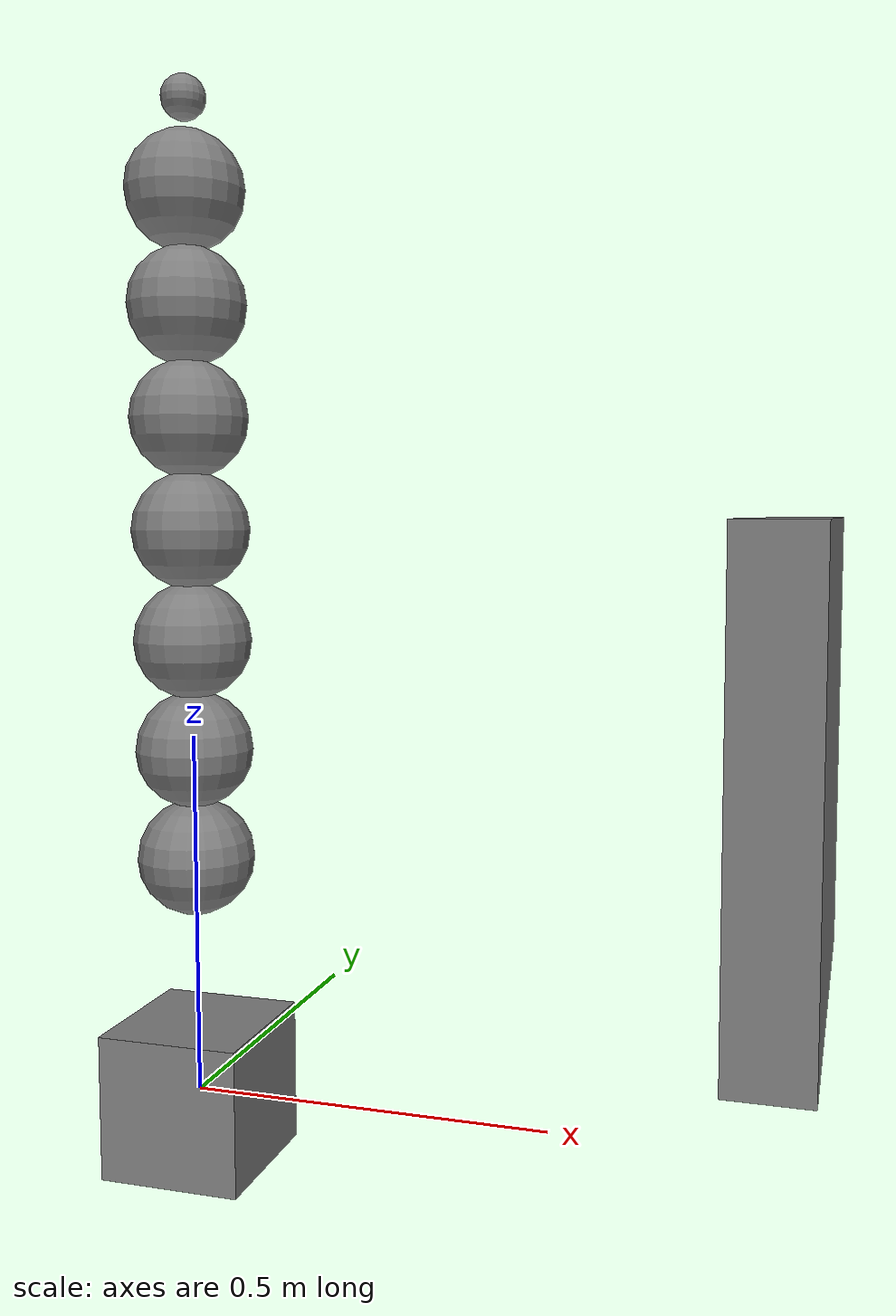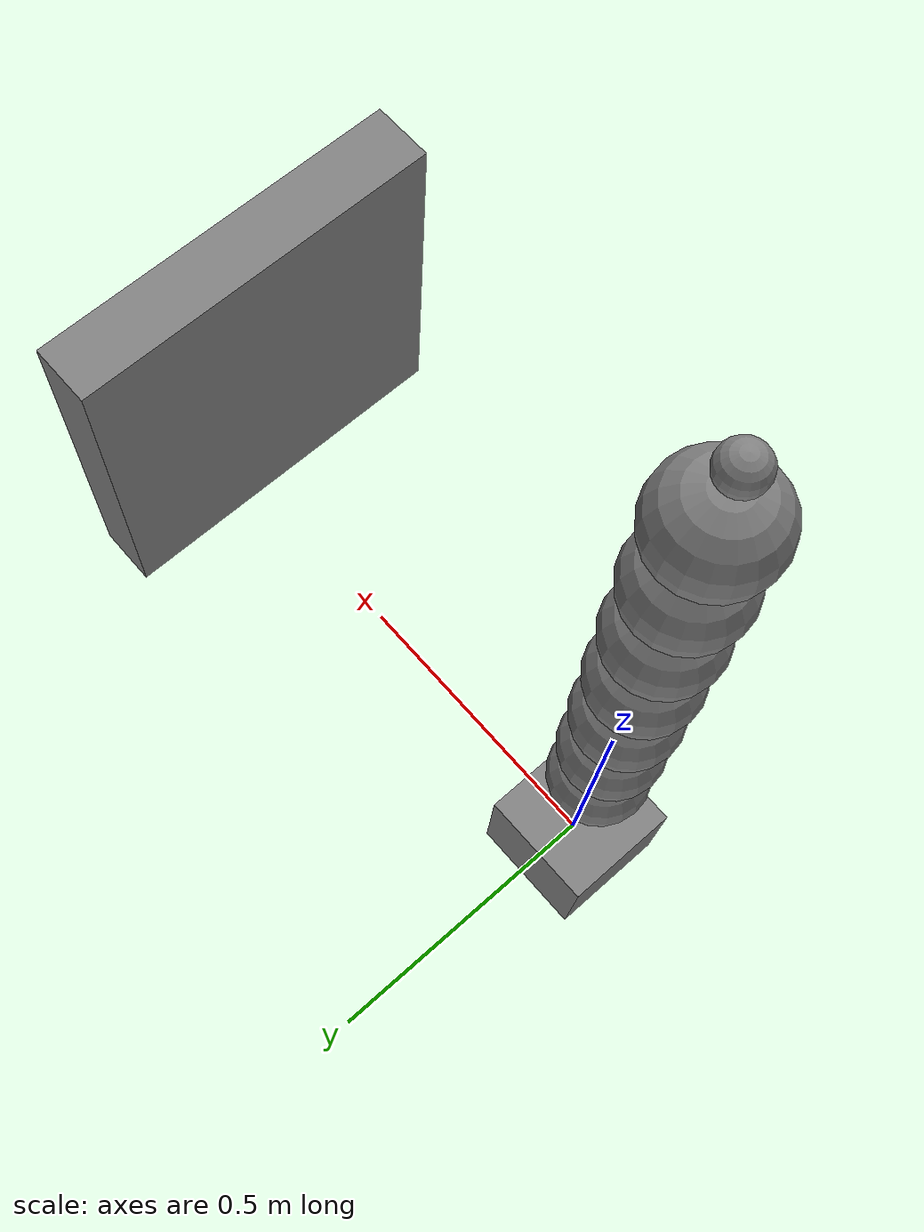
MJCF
<?xml version="1.0" ?>
<mujoco model="franka_panda">
  <compiler angle="radian" coordinate="local" inertiafromgeom="true"/>
  <option integrator="RK4" timestep="0.002"/>

  <default>
    <joint limited="true" range="-3.14159 3.14159" damping="1"/>
    <geom conaffinity="0" condim="1" density="5000"/>
    <equality solref="0.02 1"/>
  </default>

  <worldbody>
    <!-- Base -->
    <geom name="base" size="0.1 0.1 0.1" type="box" pos="0 0 0"/>

    <!-- Arm: Franka Panda 7-DOF -->
    <body name="link0" pos="0 0 0.333">
      <joint name="joint1" type="hinge" axis="0 0 1" range="-2.8973 2.8973"/>
      <geom name="link0_geom" size="0.08" type="sphere"/>
      <inertial mass="1" pos="0 0 0" diaginv="1 1 1"/>

      <body name="link1" pos="0 0 0.15">
        <joint name="joint2" type="hinge" axis="0 1 0" range="-1.7628 1.7628"/>
        <geom name="link1_geom" size="0.08" type="sphere"/>
        <inertial mass="1" pos="0 0 0" diaginv="1 1 1"/>

        <body name="link2" pos="0 0 0.15">
          <joint name="joint3" type="hinge" axis="0 0 1" range="-2.8973 2.8973"/>
          <geom name="link2_geom" size="0.08" type="sphere"/>
          <inertial mass="1" pos="0 0 0" diaginv="1 1 1"/>

          <body name="link3" pos="0 0 0.15">
            <joint name="joint4" type="hinge" axis="0 1 0" range="-3.0718 -0.0698"/>
            <geom name="link3_geom" size="0.08" type="sphere"/>
            <inertial mass="1" pos="0 0 0" diaginv="1 1 1"/>

            <body name="link4" pos="0 0 0.15">
              <joint name="joint5" type="hinge" axis="0 0 1" range="-2.8973 2.8973"/>
              <geom name="link4_geom" size="0.08" type="sphere"/>
              <inertial mass="1" pos="0 0 0" diaginv="1 1 1"/>

              <body name="link5" pos="0 0 0.15">
                <joint name="joint6" type="hinge" axis="0 1 0" range="-0.0175 3.7525"/>
                <geom name="link5_geom" size="0.08" type="sphere"/>
                <inertial mass="1" pos="0 0 0" diaginv="1 1 1"/>

                <body name="link6" pos="0 0 0.15">
                  <joint name="joint7" type="hinge" axis="0 0 1" range="-2.8973 2.8973"/>
                  <geom name="link6_geom" size="0.08" type="sphere"/>
                  <inertial mass="1" pos="0 0 0" diaginv="1 1 1"/>

                  <!-- End-effector (tool frame) -->
                  <body name="ee_link" pos="0 0 0.12">
                    <inertial mass="0.1" pos="0 0 0" diaginv="0.001 0.001 0.001"/>
                    <geom name="ee_geom" size="0.03" type="sphere"/>
                    <!-- Force/torque sensor site -->
                    <site name="ee_site" type="sphere" size="0.01" pos="0 0 0"/>
                  </body>
                </body>
              </body>
            </body>
          </body>
        </body>
      </body>
    </body>

    <!-- Obstacle for contact testing -->
    <body name="wall" pos="0.8 0 0.5">
      <geom name="wall_geom" size="0.05 0.3 0.3" type="box"/>
      <inertial mass="1000" pos="0 0 0" diaginv="1 1 1"/>
    </body>
  </worldbody>

  <!-- Actuators (torque-controlled) -->
  <actuator>
    <motor name="motor1" joint="joint1" ctrlrange="-87 87"/>
    <motor name="motor2" joint="joint2" ctrlrange="-87 87"/>
    <motor name="motor3" joint="joint3" ctrlrange="-87 87"/>
    <motor name="motor4" joint="joint4" ctrlrange="-12 12"/>
    <motor name="motor5" joint="joint5" ctrlrange="-120 120"/>
    <motor name="motor6" joint="joint6" ctrlrange="-120 120"/>
    <motor name="motor7" joint="joint7" ctrlrange="-120 120"/>
  </actuator>

  <!-- Sensors -->
  <sensor>
    <!-- Joint position sensors (encoder) -->
    <jointpos name="qpos1" joint="joint1"/>
    <jointpos name="qpos2" joint="joint2"/>
    <jointpos name="qpos3" joint="joint3"/>
    <jointpos name="qpos4" joint="joint4"/>
    <jointpos name="qpos5" joint="joint5"/>
    <jointpos name="qpos6" joint="joint6"/>
    <jointpos name="qpos7" joint="joint7"/>

    <!-- Joint velocity sensors -->
    <jointvel name="qvel1" joint="joint1"/>
    <jointvel name="qvel2" joint="joint2"/>
    <jointvel name="qvel3" joint="joint3"/>
    <jointvel name="qvel4" joint="joint4"/>
    <jointvel name="qvel5" joint="joint5"/>
    <jointvel name="qvel6" joint="joint6"/>
    <jointvel name="qvel7" joint="joint7"/>

    <!-- Actuator force sensors (motor current proxy) -->
    <actuatorfrc name="tau1" actuator="motor1"/>
    <actuatorfrc name="tau2" actuator="motor2"/>
    <actuatorfrc name="tau3" actuator="motor3"/>
    <actuatorfrc name="tau4" actuator="motor4"/>
    <actuatorfrc name="tau5" actuator="motor5"/>
    <actuatorfrc name="tau6" actuator="motor6"/>
    <actuatorfrc name="tau7" actuator="motor7"/>

    <!-- End-effector force/torque sensor (6-axis load cell) -->
    <siteforce name="ee_fx" site="ee_site"/>
    <siteforce name="ee_fy" site="ee_site"/>
    <siteforce name="ee_fz" site="ee_site"/>
  </sensor>
</mujoco>
